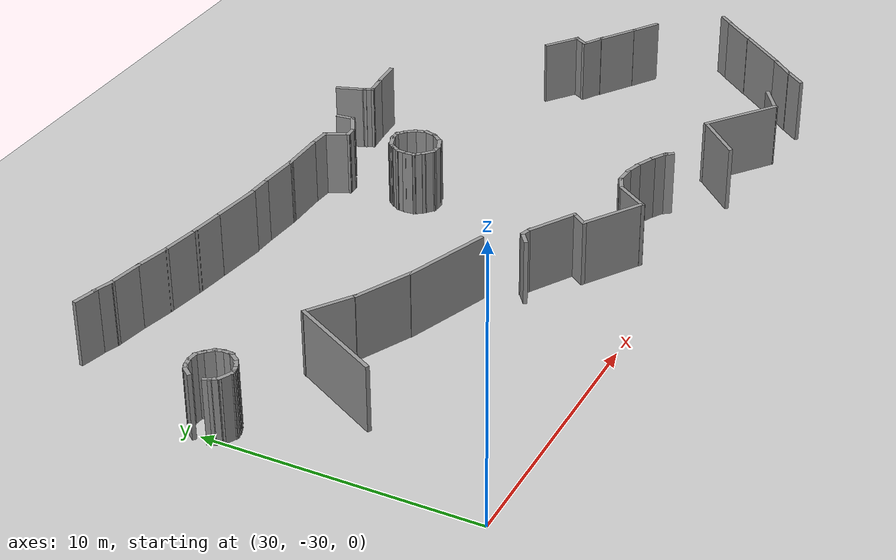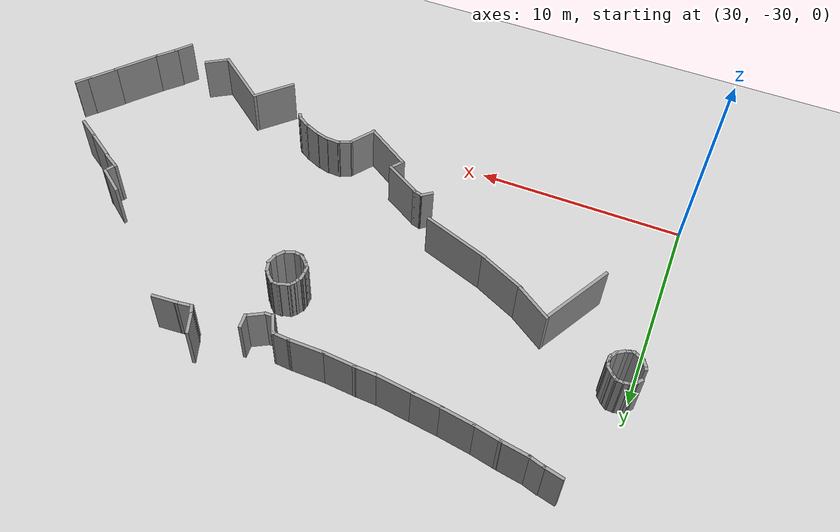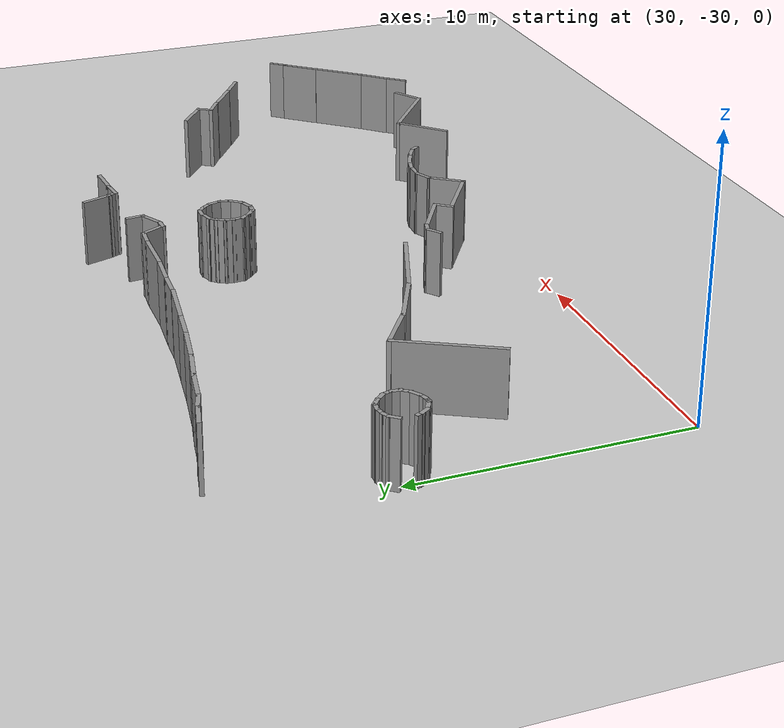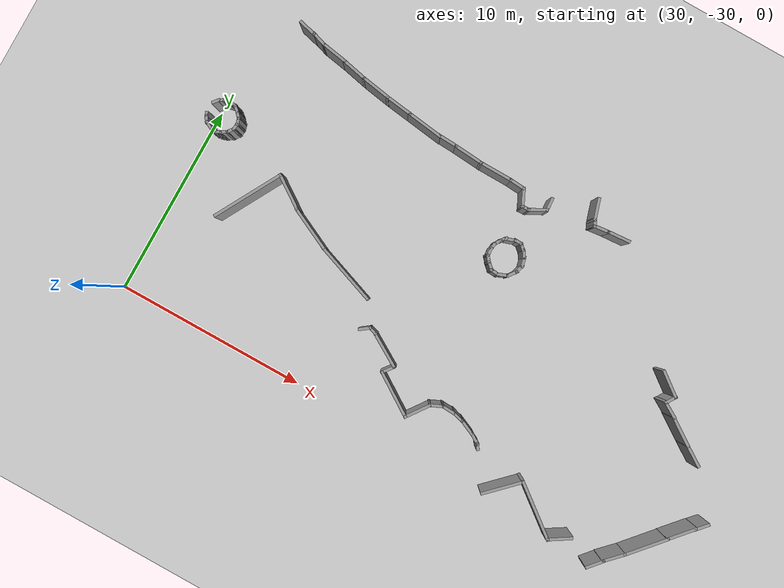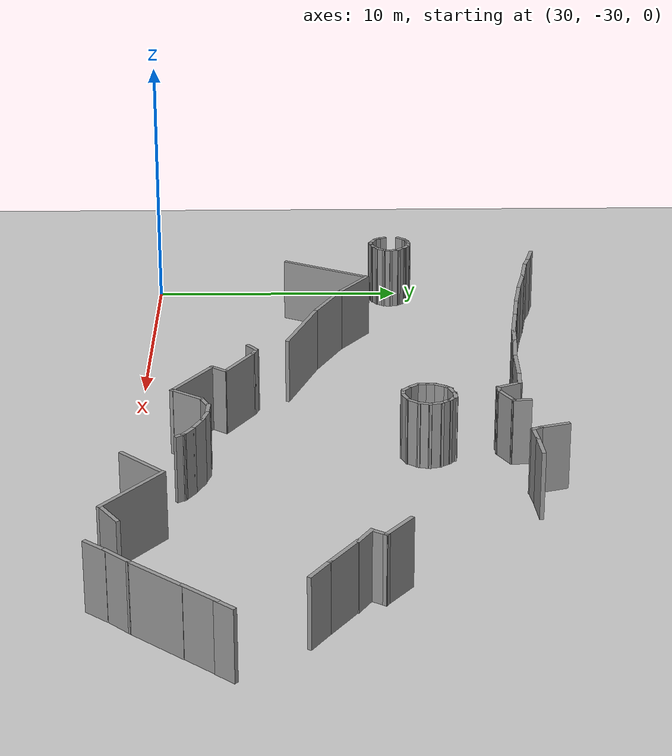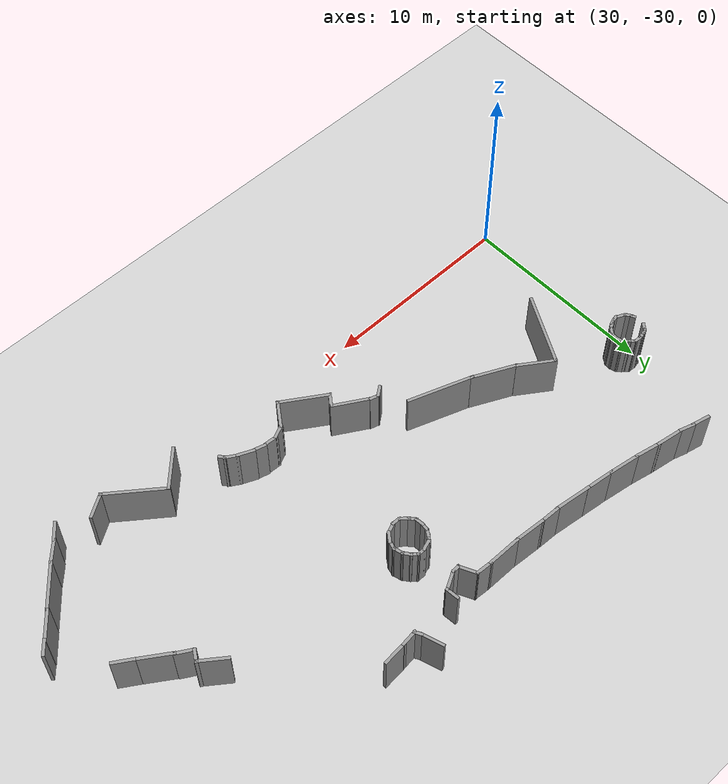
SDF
<sdf version="1.6">
 <world name="default">
  <model name="ground_plane">
   <static>1</static>
   <link name="link">
    <collision name="collision">
     <geometry><plane><normal>0 0 1</normal><size>100 100</size></plane></geometry>
     <surface><friction><ode><mu>100</mu><mu2>50</mu2></ode></friction></surface>
    </collision>
    <visual name="visual">
     <cast_shadows>0</cast_shadows>
     <geometry><plane><normal>0 0 1</normal><size>100 100</size></plane></geometry>
     <material>
      <script><uri>file://media/materials/scripts/gazebo.material</uri><name>Gazebo/Grey</name></script>
     </material>
    </visual>
   </link>
  </model>
  <model name="scene">
   <pose>1.8013 -1.70593 0 0 -0 0</pose>
   <link name="Wall_751">
    <collision name="Wall_751_Collision">
     <geometry><box><size>0.98929 0.15 2.5</size></box></geometry>
     <pose>0 0 1.25 0 -0 0</pose>
    </collision>
    <visual name="Wall_751_Visual">
     <pose>0 0 1.25 0 -0 0</pose>
     <geometry><box><size>0.98929 0.15 2.5</size></box></geometry>
     <material>
      <script><uri>file://media/materials/scripts/gazebo.material</uri><name>Gazebo/Grey</name></script>
      <ambient>1 1 1 1</ambient>
     </material>
    </visual>
    <pose>30.2701 -12.7562 0 0 0 -0.237654</pose>
   </link>
   <link name="Wall_752">
    <collision name="Wall_752_Collision">
     <geometry><box><size>0.839432 0.15 2.5</size></box></geometry>
     <pose>0 0 1.25 0 -0 0</pose>
    </collision>
    <visual name="Wall_752_Visual">
     <pose>0 0 1.25 0 -0 0</pose>
     <geometry><box><size>0.839432 0.15 2.5</size></box></geometry>
     <material>
      <script><uri>file://media/materials/scripts/gazebo.material</uri><name>Gazebo/Grey</name></script>
      <ambient>1 1 1 1</ambient>
     </material>
    </visual>
    <pose>31.0059 -12.9465 0 0 0 -0.312727</pose>
   </link>
   <link name="Wall_753">
    <collision name="Wall_753_Collision">
     <geometry><box><size>1.43343 0.15 2.5</size></box></geometry>
     <pose>0 0 1.25 0 -0 0</pose>
    </collision>
    <visual name="Wall_753_Visual">
     <pose>0 0 1.25 0 -0 0</pose>
     <geometry><box><size>1.43343 0.15 2.5</size></box></geometry>
     <material>
      <script><uri>file://media/materials/scripts/gazebo.material</uri><name>Gazebo/Grey</name></script>
      <ambient>1 1 1 1</ambient>
     </material>
    </visual>
    <pose>31.9813 -13.1586 0 0 0 -0.166028</pose>
   </link>
   <link name="Wall_754">
    <collision name="Wall_754_Collision">
     <geometry><box><size>1.405 0.15 2.5</size></box></geometry>
     <pose>0 0 1.25 0 -0 0</pose>
    </collision>
    <visual name="Wall_754_Visual">
     <pose>0 0 1.25 0 -0 0</pose>
     <geometry><box><size>1.405 0.15 2.5</size></box></geometry>
     <material>
      <script><uri>file://media/materials/scripts/gazebo.material</uri><name>Gazebo/Grey</name></script>
      <ambient>1 1 1 1</ambient>
     </material>
    </visual>
    <pose>33.2134 -13.3953 0 0 0 -0.209772</pose>
   </link>
   <link name="Wall_755">
    <collision name="Wall_755_Collision">
     <geometry><box><size>1.63156 0.15 2.5</size></box></geometry>
     <pose>0 0 1.25 0 -0 0</pose>
    </collision>
    <visual name="Wall_755_Visual">
     <pose>0 0 1.25 0 -0 0</pose>
     <geometry><box><size>1.63156 0.15 2.5</size></box></geometry>
     <material>
      <script><uri>file://media/materials/scripts/gazebo.material</uri><name>Gazebo/Grey</name></script>
      <ambient>1 1 1 1</ambient>
     </material>
    </visual>
    <pose>34.5728 -13.6453 0 0 0 -0.161769</pose>
   </link>
   <link name="Wall_756">
    <collision name="Wall_756_Collision">
     <geometry><box><size>1.50804 0.15 2.5</size></box></geometry>
     <pose>0 0 1.25 0 -0 0</pose>
    </collision>
    <visual name="Wall_756_Visual">
     <pose>0 0 1.25 0 -0 0</pose>
     <geometry><box><size>1.50804 0.15 2.5</size></box></geometry>
     <material>
      <script><uri>file://media/materials/scripts/gazebo.material</uri><name>Gazebo/Grey</name></script>
      <ambient>1 1 1 1</ambient>
     </material>
    </visual>
    <pose>35.9628 -13.8517 0 0 0 -0.128646</pose>
   </link>
   <link name="Wall_757">
    <collision name="Wall_757_Collision">
     <geometry><box><size>1.95376 0.15 2.5</size></box></geometry>
     <pose>0 0 1.25 0 -0 0</pose>
    </collision>
    <visual name="Wall_757_Visual">
     <pose>0 0 1.25 0 -0 0</pose>
     <geometry><box><size>1.95376 0.15 2.5</size></box></geometry>
     <material>
      <script><uri>file://media/materials/scripts/gazebo.material</uri><name>Gazebo/Grey</name></script>
      <ambient>1 1 1 1</ambient>
     </material>
    </visual>
    <pose>37.5161 -14.055 0 0 0 -0.129145</pose>
   </link>
   <link name="Wall_758">
    <collision name="Wall_758_Collision">
     <geometry><box><size>1.10281 0.15 2.5</size></box></geometry>
     <pose>0 0 1.25 0 -0 0</pose>
    </collision>
    <visual name="Wall_758_Visual">
     <pose>0 0 1.25 0 -0 0</pose>
     <geometry><box><size>1.10281 0.15 2.5</size></box></geometry>
     <material>
      <script><uri>file://media/materials/scripts/gazebo.material</uri><name>Gazebo/Grey</name></script>
      <ambient>1 1 1 1</ambient>
     </material>
    </visual>
    <pose>38.8863 -14.1795 0 0 0 -0.048057</pose>
   </link>
   <link name="Wall_759">
    <collision name="Wall_759_Collision">
     <geometry><box><size>1.62074 0.15 2.5</size></box></geometry>
     <pose>0 0 1.25 0 -0 0</pose>
    </collision>
    <visual name="Wall_759_Visual">
     <pose>0 0 1.25 0 -0 0</pose>
     <geometry><box><size>1.62074 0.15 2.5</size></box></geometry>
     <material>
      <script><uri>file://media/materials/scripts/gazebo.material</uri><name>Gazebo/Grey</name></script>
      <ambient>1 1 1 1</ambient>
     </material>
    </visual>
    <pose>40.0807 -14.2605 0 0 0 -0.079056</pose>
   </link>
   <link name="Wall_760">
    <collision name="Wall_760_Collision">
     <geometry><box><size>1.81132 0.15 2.5</size></box></geometry>
     <pose>0 0 1.25 0 -0 0</pose>
    </collision>
    <visual name="Wall_760_Visual">
     <pose>0 0 1.25 0 -0 0</pose>
     <geometry><box><size>1.81132 0.15 2.5</size></box></geometry>
     <material>
      <script><uri>file://media/materials/scripts/gazebo.material</uri><name>Gazebo/Grey</name></script>
      <ambient>1 1 1 1</ambient>
     </material>
    </visual>
    <pose>41.6299 -14.3258 0 0 0 -0.008739</pose>
   </link>
   <link name="Wall_761">
    <collision name="Wall_761_Collision">
     <geometry><box><size>0.889312 0.15 2.5</size></box></geometry>
     <pose>0 0 1.25 0 -0 0</pose>
    </collision>
    <visual name="Wall_761_Visual">
     <pose>0 0 1.25 0 -0 0</pose>
     <geometry><box><size>0.889312 0.15 2.5</size></box></geometry>
     <material>
      <script><uri>file://media/materials/scripts/gazebo.material</uri><name>Gazebo/Grey</name></script>
      <ambient>1 1 1 1</ambient>
     </material>
    </visual>
    <pose>42.8437 -14.3597 0 0 0 -0.071996</pose>
   </link>
   <link name="Wall_762">
    <collision name="Wall_762_Collision">
     <geometry><box><size>1.02787 0.15 2.5</size></box></geometry>
     <pose>0 0 1.25 0 -0 0</pose>
    </collision>
    <visual name="Wall_762_Visual">
     <pose>0 0 1.25 0 -0 0</pose>
     <geometry><box><size>1.02787 0.15 2.5</size></box></geometry>
     <material>
      <script><uri>file://media/materials/scripts/gazebo.material</uri><name>Gazebo/Grey</name></script>
      <ambient>1 1 1 1</ambient>
     </material>
    </visual>
    <pose>43.4186 -14.7811 0 0 0 -1.119</pose>
   </link>
   <link name="Wall_763">
    <collision name="Wall_763_Collision">
     <geometry><box><size>0.484004 0.15 2.5</size></box></geometry>
     <pose>0 0 1.25 0 -0 0</pose>
    </collision>
    <visual name="Wall_763_Visual">
     <pose>0 0 1.25 0 -0 0</pose>
     <geometry><box><size>0.484004 0.15 2.5</size></box></geometry>
     <material>
      <script><uri>file://media/materials/scripts/gazebo.material</uri><name>Gazebo/Grey</name></script>
      <ambient>1 1 1 1</ambient>
     </material>
    </visual>
    <pose>43.7625 -15.1688 0 0 -0 0.043483</pose>
   </link>
   <link name="Wall_764">
    <collision name="Wall_764_Collision">
     <geometry><box><size>1.03221 0.15 2.5</size></box></geometry>
     <pose>0 0 1.25 0 -0 0</pose>
    </collision>
    <visual name="Wall_764_Visual">
     <pose>0 0 1.25 0 -0 0</pose>
     <geometry><box><size>1.03221 0.15 2.5</size></box></geometry>
     <material>
      <script><uri>file://media/materials/scripts/gazebo.material</uri><name>Gazebo/Grey</name></script>
      <ambient>1 1 1 1</ambient>
     </material>
    </visual>
    <pose>44.33 -14.9482 0 0 -0 0.504868</pose>
   </link>
   <link name="Wall_765">
    <collision name="Wall_765_Collision">
     <geometry><box><size>0.729718 0.15 2.5</size></box></geometry>
     <pose>0 0 1.25 0 -0 0</pose>
    </collision>
    <visual name="Wall_765_Visual">
     <pose>0 0 1.25 0 -0 0</pose>
     <geometry><box><size>0.729718 0.15 2.5</size></box></geometry>
     <material>
      <script><uri>file://media/materials/scripts/gazebo.material</uri><name>Gazebo/Grey</name></script>
      <ambient>1 1 1 1</ambient>
     </material>
    </visual>
    <pose>44.7063 -14.446 0 0 -0 1.65447</pose>
   </link>
   <link name="Wall_769">
    <collision name="Wall_769_Collision">
     <geometry><box><size>1.18613 0.15 2.5</size></box></geometry>
     <pose>0 0 1.25 0 -0 0</pose>
    </collision>
    <visual name="Wall_769_Visual">
     <pose>0 0 1.25 0 -0 0</pose>
     <geometry><box><size>1.18613 0.15 2.5</size></box></geometry>
     <material>
      <script><uri>file://media/materials/scripts/gazebo.material</uri><name>Gazebo/Grey</name></script>
      <ambient>1 1 1 1</ambient>
     </material>
    </visual>
    <pose>46.8174 -13.5243 0 0 0 -1.26087</pose>
   </link>
   <link name="Wall_770">
    <collision name="Wall_770_Collision">
     <geometry><box><size>0.470663 0.15 2.5</size></box></geometry>
     <pose>0 0 1.25 0 -0 0</pose>
    </collision>
    <visual name="Wall_770_Visual">
     <pose>0 0 1.25 0 -0 0</pose>
     <geometry><box><size>0.470663 0.15 2.5</size></box></geometry>
     <material>
      <script><uri>file://media/materials/scripts/gazebo.material</uri><name>Gazebo/Grey</name></script>
      <ambient>1 1 1 1</ambient>
     </material>
    </visual>
    <pose>47.05 -14.1429 0 0 0 -1.08686</pose>
   </link>
   <link name="Wall_771">
    <collision name="Wall_771_Collision">
     <geometry><box><size>0.887862 0.15 2.5</size></box></geometry>
     <pose>0 0 1.25 0 -0 0</pose>
    </collision>
    <visual name="Wall_771_Visual">
     <pose>0 0 1.25 0 -0 0</pose>
     <geometry><box><size>0.887862 0.15 2.5</size></box></geometry>
     <material>
      <script><uri>file://media/materials/scripts/gazebo.material</uri><name>Gazebo/Grey</name></script>
      <ambient>1 1 1 1</ambient>
     </material>
    </visual>
    <pose>47.4745 -14.2431 0 0 -0 0.113384</pose>
   </link>
   <link name="Wall_772">
    <collision name="Wall_772_Collision">
     <geometry><box><size>1.27026 0.15 2.5</size></box></geometry>
     <pose>0 0 1.25 0 -0 0</pose>
    </collision>
    <visual name="Wall_772_Visual">
     <pose>0 0 1.25 0 -0 0</pose>
     <geometry><box><size>1.27026 0.15 2.5</size></box></geometry>
     <material>
      <script><uri>file://media/materials/scripts/gazebo.material</uri><name>Gazebo/Grey</name></script>
      <ambient>1 1 1 1</ambient>
     </material>
    </visual>
    <pose>48.3829 -14.1596 0 0 -0 0.07459</pose>
   </link>
   <link name="Wall_776">
    <collision name="Wall_776_Collision">
     <geometry><box><size>1.52105 0.15 2.5</size></box></geometry>
     <pose>0 0 1.25 0 -0 0</pose>
    </collision>
    <visual name="Wall_776_Visual">
     <pose>0 0 1.25 0 -0 0</pose>
     <geometry><box><size>1.52105 0.15 2.5</size></box></geometry>
     <material>
      <script><uri>file://media/materials/scripts/gazebo.material</uri><name>Gazebo/Grey</name></script>
      <ambient>1 1 1 1</ambient>
     </material>
    </visual>
    <pose>54.0741 -19.1901 0 0 0 -0.648963</pose>
   </link>
   <link name="Wall_777">
    <collision name="Wall_777_Collision">
     <geometry><box><size>0.693 0.15 2.5</size></box></geometry>
     <pose>0 0 1.25 0 -0 0</pose>
    </collision>
    <visual name="Wall_777_Visual">
     <pose>0 0 1.25 0 -0 0</pose>
     <geometry><box><size>0.693 0.15 2.5</size></box></geometry>
     <material>
      <script><uri>file://media/materials/scripts/gazebo.material</uri><name>Gazebo/Grey</name></script>
      <ambient>1 1 1 1</ambient>
     </material>
    </visual>
    <pose>54.4781 -19.8164 0 0 0 -2.12225</pose>
   </link>
   <link name="Wall_778">
    <collision name="Wall_778_Collision">
     <geometry><box><size>1.00671 0.15 2.5</size></box></geometry>
     <pose>0 0 1.25 0 -0 0</pose>
    </collision>
    <visual name="Wall_778_Visual">
     <pose>0 0 1.25 0 -0 0</pose>
     <geometry><box><size>1.00671 0.15 2.5</size></box></geometry>
     <material>
      <script><uri>file://media/materials/scripts/gazebo.material</uri><name>Gazebo/Grey</name></script>
      <ambient>1 1 1 1</ambient>
     </material>
    </visual>
    <pose>54.6847 -20.2668 0 0 0 -0.537065</pose>
   </link>
   <link name="Wall_779">
    <collision name="Wall_779_Collision">
     <geometry><box><size>1.68729 0.15 2.5</size></box></geometry>
     <pose>0 0 1.25 0 -0 0</pose>
    </collision>
    <visual name="Wall_779_Visual">
     <pose>0 0 1.25 0 -0 0</pose>
     <geometry><box><size>1.68729 0.15 2.5</size></box></geometry>
     <material>
      <script><uri>file://media/materials/scripts/gazebo.material</uri><name>Gazebo/Grey</name></script>
      <ambient>1 1 1 1</ambient>
     </material>
    </visual>
    <pose>55.6704 -20.9356 0 0 0 -0.59427</pose>
   </link>
   <link name="Wall_780">
    <collision name="Wall_780_Collision">
     <geometry><box><size>1.21804 0.15 2.5</size></box></geometry>
     <pose>0 0 1.25 0 -0 0</pose>
    </collision>
    <visual name="Wall_780_Visual">
     <pose>0 0 1.25 0 -0 0</pose>
     <geometry><box><size>1.21804 0.15 2.5</size></box></geometry>
     <material>
      <script><uri>file://media/materials/scripts/gazebo.material</uri><name>Gazebo/Grey</name></script>
      <ambient>1 1 1 1</ambient>
     </material>
    </visual>
    <pose>56.7742 -21.6761 0 0 0 -0.576213</pose>
   </link>
   <link name="Wall_784">
    <collision name="Wall_784_Collision">
     <geometry><box><size>1.01065 0.15 2.5</size></box></geometry>
     <pose>0 0 1.25 0 -0 0</pose>
    </collision>
    <visual name="Wall_784_Visual">
     <pose>0 0 1.25 0 -0 0</pose>
     <geometry><box><size>1.01065 0.15 2.5</size></box></geometry>
     <material>
      <script><uri>file://media/materials/scripts/gazebo.material</uri><name>Gazebo/Grey</name></script>
      <ambient>1 1 1 1</ambient>
     </material>
    </visual>
    <pose>55.1898 -28.5674 0 0 -0 0.864358</pose>
   </link>
   <link name="Wall_785">
    <collision name="Wall_785_Collision">
     <geometry><box><size>1.2309 0.15 2.5</size></box></geometry>
     <pose>0 0 1.25 0 -0 0</pose>
    </collision>
    <visual name="Wall_785_Visual">
     <pose>0 0 1.25 0 -0 0</pose>
     <geometry><box><size>1.2309 0.15 2.5</size></box></geometry>
     <material>
      <script><uri>file://media/materials/scripts/gazebo.material</uri><name>Gazebo/Grey</name></script>
      <ambient>1 1 1 1</ambient>
     </material>
    </visual>
    <pose>55.8272 -27.8531 0 0 -0 0.797959</pose>
   </link>
   <link name="Wall_786">
    <collision name="Wall_786_Collision">
     <geometry><box><size>2.36427 0.15 2.5</size></box></geometry>
     <pose>0 0 1.25 0 -0 0</pose>
    </collision>
    <visual name="Wall_786_Visual">
     <pose>0 0 1.25 0 -0 0</pose>
     <geometry><box><size>2.36427 0.15 2.5</size></box></geometry>
     <material>
      <script><uri>file://media/materials/scripts/gazebo.material</uri><name>Gazebo/Grey</name></script>
      <ambient>1 1 1 1</ambient>
     </material>
    </visual>
    <pose>56.9498 -26.6112 0 0 -0 0.855588</pose>
   </link>
   <link name="Wall_787">
    <collision name="Wall_787_Collision">
     <geometry><box><size>1.55987 0.15 2.5</size></box></geometry>
     <pose>0 0 1.25 0 -0 0</pose>
    </collision>
    <visual name="Wall_787_Visual">
     <pose>0 0 1.25 0 -0 0</pose>
     <geometry><box><size>1.55987 0.15 2.5</size></box></geometry>
     <material>
      <script><uri>file://media/materials/scripts/gazebo.material</uri><name>Gazebo/Grey</name></script>
      <ambient>1 1 1 1</ambient>
     </material>
    </visual>
    <pose>58.1396 -25.2252 0 0 -0 0.85286</pose>
   </link>
   <link name="Wall_788">
    <collision name="Wall_788_Collision">
     <geometry><box><size>0.819127 0.15 2.5</size></box></geometry>
     <pose>0 0 1.25 0 -0 0</pose>
    </collision>
    <visual name="Wall_788_Visual">
     <pose>0 0 1.25 0 -0 0</pose>
     <geometry><box><size>0.819127 0.15 2.5</size></box></geometry>
     <material>
      <script><uri>file://media/materials/scripts/gazebo.material</uri><name>Gazebo/Grey</name></script>
      <ambient>1 1 1 1</ambient>
     </material>
    </visual>
    <pose>58.825 -24.4629 0 0 -0 0.846309</pose>
   </link>
   <link name="Wall_790">
    <collision name="Wall_790_Collision">
     <geometry><box><size>1.30352 0.15 2.5</size></box></geometry>
     <pose>0 0 1.25 0 -0 0</pose>
    </collision>
    <visual name="Wall_790_Visual">
     <pose>0 0 1.25 0 -0 0</pose>
     <geometry><box><size>1.30352 0.15 2.5</size></box></geometry>
     <material>
      <script><uri>file://media/materials/scripts/gazebo.material</uri><name>Gazebo/Grey</name></script>
      <ambient>1 1 1 1</ambient>
     </material>
    </visual>
    <pose>53.0876 -28.3378 0 0 0 -2.58174</pose>
   </link>
   <link name="Wall_791">
    <collision name="Wall_791_Collision">
     <geometry><box><size>3.20216 0.15 2.5</size></box></geometry>
     <pose>0 0 1.25 0 -0 0</pose>
    </collision>
    <visual name="Wall_791_Visual">
     <pose>0 0 1.25 0 -0 0</pose>
     <geometry><box><size>3.20216 0.15 2.5</size></box></geometry>
     <material>
      <script><uri>file://media/materials/scripts/gazebo.material</uri><name>Gazebo/Grey</name></script>
      <ambient>1 1 1 1</ambient>
     </material>
    </visual>
    <pose>51.3921 -27.7292 0 0 -0 2.48285</pose>
   </link>
   <link name="Wall_792">
    <collision name="Wall_792_Collision">
     <geometry><box><size>2.21224 0.15 2.5</size></box></geometry>
     <pose>0 0 1.25 0 -0 0</pose>
    </collision>
    <visual name="Wall_792_Visual">
     <pose>0 0 1.25 0 -0 0</pose>
     <geometry><box><size>2.21224 0.15 2.5</size></box></geometry>
     <material>
      <script><uri>file://media/materials/scripts/gazebo.material</uri><name>Gazebo/Grey</name></script>
      <ambient>1 1 1 1</ambient>
     </material>
    </visual>
    <pose>49.4549 -27.542 0 0 0 -2.35807</pose>
   </link>
   <link name="Wall_796">
    <collision name="Wall_796_Collision">
     <geometry><box><size>0.646752 0.15 2.5</size></box></geometry>
     <pose>0 0 1.25 0 -0 0</pose>
    </collision>
    <visual name="Wall_796_Visual">
     <pose>0 0 1.25 0 -0 0</pose>
     <geometry><box><size>0.646752 0.15 2.5</size></box></geometry>
     <material>
      <script><uri>file://media/materials/scripts/gazebo.material</uri><name>Gazebo/Grey</name></script>
      <ambient>1 1 1 1</ambient>
     </material>
    </visual>
    <pose>39.8397 -24.0946 0 0 -0 0.642309</pose>
   </link>
   <link name="Wall_797">
    <collision name="Wall_797_Collision">
     <geometry><box><size>0.514055 0.15 2.5</size></box></geometry>
     <pose>0 0 1.25 0 -0 0</pose>
    </collision>
    <visual name="Wall_797_Visual">
     <pose>0 0 1.25 0 -0 0</pose>
     <geometry><box><size>0.514055 0.15 2.5</size></box></geometry>
     <material>
      <script><uri>file://media/materials/scripts/gazebo.material</uri><name>Gazebo/Grey</name></script>
      <ambient>1 1 1 1</ambient>
     </material>
    </visual>
    <pose>40.2302 -23.9959 0 0 0 -0.278773</pose>
   </link>
   <link name="Wall_798">
    <collision name="Wall_798_Collision">
     <geometry><box><size>2.00124 0.15 2.5</size></box></geometry>
     <pose>0 0 1.25 0 -0 0</pose>
    </collision>
    <visual name="Wall_798_Visual">
     <pose>0 0 1.25 0 -0 0</pose>
     <geometry><box><size>2.00124 0.15 2.5</size></box></geometry>
     <material>
      <script><uri>file://media/materials/scripts/gazebo.material</uri><name>Gazebo/Grey</name></script>
      <ambient>1 1 1 1</ambient>
     </material>
    </visual>
    <pose>41.1993 -24.5383 0 0 0 -0.539608</pose>
   </link>
   <link name="Wall_799">
    <collision name="Wall_799_Collision">
     <geometry><box><size>0.779509 0.15 2.5</size></box></geometry>
     <pose>0 0 1.25 0 -0 0</pose>
    </collision>
    <visual name="Wall_799_Visual">
     <pose>0 0 1.25 0 -0 0</pose>
     <geometry><box><size>0.779509 0.15 2.5</size></box></geometry>
     <material>
      <script><uri>file://media/materials/scripts/gazebo.material</uri><name>Gazebo/Grey</name></script>
      <ambient>1 1 1 1</ambient>
     </material>
    </visual>
    <pose>41.8024 -25.2807 0 0 0 -2.22285</pose>
   </link>
   <link name="Wall_800">
    <collision name="Wall_800_Collision">
     <geometry><box><size>2.58726 0.15 2.5</size></box></geometry>
     <pose>0 0 1.25 0 -0 0</pose>
    </collision>
    <visual name="Wall_800_Visual">
     <pose>0 0 1.25 0 -0 0</pose>
     <geometry><box><size>2.58726 0.15 2.5</size></box></geometry>
     <material>
      <script><uri>file://media/materials/scripts/gazebo.material</uri><name>Gazebo/Grey</name></script>
      <ambient>1 1 1 1</ambient>
     </material>
    </visual>
    <pose>42.6476 -26.1985 0 0 0 -0.579759</pose>
   </link>
   <link name="Wall_801">
    <collision name="Wall_801_Collision">
     <geometry><box><size>1.46683 0.15 2.5</size></box></geometry>
     <pose>0 0 1.25 0 -0 0</pose>
    </collision>
    <visual name="Wall_801_Visual">
     <pose>0 0 1.25 0 -0 0</pose>
     <geometry><box><size>1.46683 0.15 2.5</size></box></geometry>
     <material>
      <script><uri>file://media/materials/scripts/gazebo.material</uri><name>Gazebo/Grey</name></script>
      <ambient>1 1 1 1</ambient>
     </material>
    </visual>
    <pose>44.0345 -26.3313 0 0 -0 0.948074</pose>
   </link>
   <link name="Wall_802">
    <collision name="Wall_802_Collision">
     <geometry><box><size>0.753584 0.15 2.5</size></box></geometry>
     <pose>0 0 1.25 0 -0 0</pose>
    </collision>
    <visual name="Wall_802_Visual">
     <pose>0 0 1.25 0 -0 0</pose>
     <geometry><box><size>0.753584 0.15 2.5</size></box></geometry>
     <material>
      <script><uri>file://media/materials/scripts/gazebo.material</uri><name>Gazebo/Grey</name></script>
      <ambient>1 1 1 1</ambient>
     </material>
    </visual>
    <pose>44.6937 -25.6555 0 0 -0 0.423948</pose>
   </link>
   <link name="Wall_803">
    <collision name="Wall_803_Collision">
     <geometry><box><size>0.787339 0.15 2.5</size></box></geometry>
     <pose>0 0 1.25 0 -0 0</pose>
    </collision>
    <visual name="Wall_803_Visual">
     <pose>0 0 1.25 0 -0 0</pose>
     <geometry><box><size>0.787339 0.15 2.5</size></box></geometry>
     <material>
      <script><uri>file://media/materials/scripts/gazebo.material</uri><name>Gazebo/Grey</name></script>
      <ambient>1 1 1 1</ambient>
     </material>
    </visual>
    <pose>45.2872 -25.5311 0 0 0 -0.051573</pose>
   </link>
   <link name="Wall_804">
    <collision name="Wall_804_Collision">
     <geometry><box><size>0.717811 0.15 2.5</size></box></geometry>
     <pose>0 0 1.25 0 -0 0</pose>
    </collision>
    <visual name="Wall_804_Visual">
     <pose>0 0 1.25 0 -0 0</pose>
     <geometry><box><size>0.717811 0.15 2.5</size></box></geometry>
     <material>
      <script><uri>file://media/materials/scripts/gazebo.material</uri><name>Gazebo/Grey</name></script>
      <ambient>1 1 1 1</ambient>
     </material>
    </visual>
    <pose>45.8785 -25.6084 0 0 0 -0.277021</pose>
   </link>
   <link name="Wall_805">
    <collision name="Wall_805_Collision">
     <geometry><box><size>0.921295 0.15 2.5</size></box></geometry>
     <pose>0 0 1.25 0 -0 0</pose>
    </collision>
    <visual name="Wall_805_Visual">
     <pose>0 0 1.25 0 -0 0</pose>
     <geometry><box><size>0.921295 0.15 2.5</size></box></geometry>
     <material>
      <script><uri>file://media/materials/scripts/gazebo.material</uri><name>Gazebo/Grey</name></script>
      <ambient>1 1 1 1</ambient>
     </material>
    </visual>
    <pose>46.5032 -25.8277 0 0 0 -0.423116</pose>
   </link>
   <link name="Wall_806">
    <collision name="Wall_806_Collision">
     <geometry><box><size>0.719877 0.15 2.5</size></box></geometry>
     <pose>0 0 1.25 0 -0 0</pose>
    </collision>
    <visual name="Wall_806_Visual">
     <pose>0 0 1.25 0 -0 0</pose>
     <geometry><box><size>0.719877 0.15 2.5</size></box></geometry>
     <material>
      <script><uri>file://media/materials/scripts/gazebo.material</uri><name>Gazebo/Grey</name></script>
      <ambient>1 1 1 1</ambient>
     </material>
    </visual>
    <pose>47.1136 -26.1364 0 0 0 -0.555579</pose>
   </link>
   <link name="Wall_807">
    <collision name="Wall_807_Collision">
     <geometry><box><size>0.412436 0.15 2.5</size></box></geometry>
     <pose>0 0 1.25 0 -0 0</pose>
    </collision>
    <visual name="Wall_807_Visual">
     <pose>0 0 1.25 0 -0 0</pose>
     <geometry><box><size>0.412436 0.15 2.5</size></box></geometry>
     <material>
      <script><uri>file://media/materials/scripts/gazebo.material</uri><name>Gazebo/Grey</name></script>
      <ambient>1 1 1 1</ambient>
     </material>
    </visual>
    <pose>47.4176 -26.3917 0 0 0 -0.928925</pose>
   </link>
   <link name="Wall_810">
    <collision name="Wall_810_Collision">
     <geometry><box><size>3.84944 0.15 2.5</size></box></geometry>
     <pose>0 0 1.25 0 -0 0</pose>
    </collision>
    <visual name="Wall_810_Visual">
     <pose>0 0 1.25 0 -0 0</pose>
     <geometry><box><size>3.84944 0.15 2.5</size></box></geometry>
     <material>
      <script><uri>file://media/materials/scripts/gazebo.material</uri><name>Gazebo/Grey</name></script>
      <ambient>1 1 1 1</ambient>
     </material>
    </visual>
    <pose>31.7205 -21.2552 0 0 -0 1.06729</pose>
   </link>
   <link name="Wall_811">
    <collision name="Wall_811_Collision">
     <geometry><box><size>2.005 0.15 2.5</size></box></geometry>
     <pose>0 0 1.25 0 -0 0</pose>
    </collision>
    <visual name="Wall_811_Visual">
     <pose>0 0 1.25 0 -0 0</pose>
     <geometry><box><size>2.005 0.15 2.5</size></box></geometry>
     <material>
      <script><uri>file://media/materials/scripts/gazebo.material</uri><name>Gazebo/Grey</name></script>
      <ambient>1 1 1 1</ambient>
     </material>
    </visual>
    <pose>33.3765 -20.1395 0 0 0 -0.603828</pose>
   </link>
   <link name="Wall_812">
    <collision name="Wall_812_Collision">
     <geometry><box><size>2.39678 0.15 2.5</size></box></geometry>
     <pose>0 0 1.25 0 -0 0</pose>
    </collision>
    <visual name="Wall_812_Visual">
     <pose>0 0 1.25 0 -0 0</pose>
     <geometry><box><size>2.39678 0.15 2.5</size></box></geometry>
     <material>
      <script><uri>file://media/materials/scripts/gazebo.material</uri><name>Gazebo/Grey</name></script>
      <ambient>1 1 1 1</ambient>
     </material>
    </visual>
    <pose>35.1518 -21.1765 0 0 0 -0.449593</pose>
   </link>
   <link name="Wall_813">
    <collision name="Wall_813_Collision">
     <geometry><box><size>3.42062 0.15 2.5</size></box></geometry>
     <pose>0 0 1.25 0 -0 0</pose>
    </collision>
    <visual name="Wall_813_Visual">
     <pose>0 0 1.25 0 -0 0</pose>
     <geometry><box><size>3.42062 0.15 2.5</size></box></geometry>
     <material>
      <script><uri>file://media/materials/scripts/gazebo.material</uri><name>Gazebo/Grey</name></script>
      <ambient>1 1 1 1</ambient>
     </material>
    </visual>
    <pose>37.67 -22.2152 0 0 0 -0.343286</pose>
   </link>
   <link name="Wall_838">
    <collision name="Wall_838_Collision">
     <geometry><box><size>0.431447 0.15 2.5</size></box></geometry>
     <pose>0 0 1.25 0 -0 0</pose>
    </collision>
    <visual name="Wall_838_Visual">
     <pose>0 0 1.25 0 -0 0</pose>
     <geometry><box><size>0.431447 0.15 2.5</size></box></geometry>
     <material>
      <script><uri>file://media/materials/scripts/gazebo.material</uri><name>Gazebo/Grey</name></script>
      <ambient>1 1 1 1</ambient>
     </material>
    </visual>
    <pose>28.8926 -17.7519 0 0 0 -0.09209</pose>
   </link>
   <link name="Wall_839">
    <collision name="Wall_839_Collision">
     <geometry><box><size>0.447133 0.15 2.5</size></box></geometry>
     <pose>0 0 1.25 0 -0 0</pose>
    </collision>
    <visual name="Wall_839_Visual">
     <pose>0 0 1.25 0 -0 0</pose>
     <geometry><box><size>0.447133 0.15 2.5</size></box></geometry>
     <material>
      <script><uri>file://media/materials/scripts/gazebo.material</uri><name>Gazebo/Grey</name></script>
      <ambient>1 1 1 1</ambient>
     </material>
    </visual>
    <pose>29.1578 -17.8567 0 0 0 -0.666342</pose>
   </link>
   <link name="Wall_840">
    <collision name="Wall_840_Collision">
     <geometry><box><size>0.490764 0.15 2.5</size></box></geometry>
     <pose>0 0 1.25 0 -0 0</pose>
    </collision>
    <visual name="Wall_840_Visual">
     <pose>0 0 1.25 0 -0 0</pose>
     <geometry><box><size>0.490764 0.15 2.5</size></box></geometry>
     <material>
      <script><uri>file://media/materials/scripts/gazebo.material</uri><name>Gazebo/Grey</name></script>
      <ambient>1 1 1 1</ambient>
     </material>
    </visual>
    <pose>29.3814 -18.0741 0 0 0 -0.829238</pose>
   </link>
   <link name="Wall_841">
    <collision name="Wall_841_Collision">
     <geometry><box><size>0.453724 0.15 2.5</size></box></geometry>
     <pose>0 0 1.25 0 -0 0</pose>
    </collision>
    <visual name="Wall_841_Visual">
     <pose>0 0 1.25 0 -0 0</pose>
     <geometry><box><size>0.453724 0.15 2.5</size></box></geometry>
     <material>
      <script><uri>file://media/materials/scripts/gazebo.material</uri><name>Gazebo/Grey</name></script>
      <ambient>1 1 1 1</ambient>
     </material>
    </visual>
    <pose>29.5447 -18.3463 0 0 0 -1.30461</pose>
   </link>
   <link name="Wall_842">
    <collision name="Wall_842_Collision">
     <geometry><box><size>0.435362 0.15 2.5</size></box></geometry>
     <pose>0 0 1.25 0 -0 0</pose>
    </collision>
    <visual name="Wall_842_Visual">
     <pose>0 0 1.25 0 -0 0</pose>
     <geometry><box><size>0.435362 0.15 2.5</size></box></geometry>
     <material>
      <script><uri>file://media/materials/scripts/gazebo.material</uri><name>Gazebo/Grey</name></script>
      <ambient>1 1 1 1</ambient>
     </material>
    </visual>
    <pose>29.5695 -18.643 0 0 0 -1.67708</pose>
   </link>
   <link name="Wall_843">
    <collision name="Wall_843_Collision">
     <geometry><box><size>0.484761 0.15 2.5</size></box></geometry>
     <pose>0 0 1.25 0 -0 0</pose>
    </collision>
    <visual name="Wall_843_Visual">
     <pose>0 0 1.25 0 -0 0</pose>
     <geometry><box><size>0.484761 0.15 2.5</size></box></geometry>
     <material>
      <script><uri>file://media/materials/scripts/gazebo.material</uri><name>Gazebo/Grey</name></script>
      <ambient>1 1 1 1</ambient>
     </material>
    </visual>
    <pose>29.4562 -18.9121 0 0 0 -2.19788</pose>
   </link>
   <link name="Wall_844">
    <collision name="Wall_844_Collision">
     <geometry><box><size>0.475386 0.15 2.5</size></box></geometry>
     <pose>0 0 1.25 0 -0 0</pose>
    </collision>
    <visual name="Wall_844_Visual">
     <pose>0 0 1.25 0 -0 0</pose>
     <geometry><box><size>0.475386 0.15 2.5</size></box></geometry>
     <material>
      <script><uri>file://media/materials/scripts/gazebo.material</uri><name>Gazebo/Grey</name></script>
      <ambient>1 1 1 1</ambient>
     </material>
    </visual>
    <pose>29.2138 -19.1372 0 0 0 -2.55821</pose>
   </link>
   <link name="Wall_845">
    <collision name="Wall_845_Collision">
     <geometry><box><size>0.388103 0.15 2.5</size></box></geometry>
     <pose>0 0 1.25 0 -0 0</pose>
    </collision>
    <visual name="Wall_845_Visual">
     <pose>0 0 1.25 0 -0 0</pose>
     <geometry><box><size>0.388103 0.15 2.5</size></box></geometry>
     <material>
      <script><uri>file://media/materials/scripts/gazebo.material</uri><name>Gazebo/Grey</name></script>
      <ambient>1 1 1 1</ambient>
     </material>
    </visual>
    <pose>28.9757 -19.2706 0 0 0 -2.76571</pose>
   </link>
   <link name="Wall_846">
    <collision name="Wall_846_Collision">
     <geometry><box><size>0.360688 0.15 2.5</size></box></geometry>
     <pose>0 0 1.25 0 -0 0</pose>
    </collision>
    <visual name="Wall_846_Visual">
     <pose>0 0 1.25 0 -0 0</pose>
     <geometry><box><size>0.360688 0.15 2.5</size></box></geometry>
     <material>
      <script><uri>file://media/materials/scripts/gazebo.material</uri><name>Gazebo/Grey</name></script>
      <ambient>1 1 1 1</ambient>
     </material>
    </visual>
    <pose>28.7605 -19.32 0 0 0 -3.00751</pose>
   </link>
   <link name="Wall_851">
    <collision name="Wall_851_Collision">
     <geometry><box><size>0.615721 0.15 2.5</size></box></geometry>
     <pose>0 0 1.25 0 -0 0</pose>
    </collision>
    <visual name="Wall_851_Visual">
     <pose>0 0 1.25 0 -0 0</pose>
     <geometry><box><size>0.615721 0.15 2.5</size></box></geometry>
     <material>
      <script><uri>file://media/materials/scripts/gazebo.material</uri><name>Gazebo/Grey</name></script>
      <ambient>1 1 1 1</ambient>
     </material>
    </visual>
    <pose>28.4563 -19.2297 0 0 -0 2.67691</pose>
   </link>
   <link name="Wall_852">
    <collision name="Wall_852_Collision">
     <geometry><box><size>0.43909 0.15 2.5</size></box></geometry>
     <pose>0 0 1.25 0 -0 0</pose>
    </collision>
    <visual name="Wall_852_Visual">
     <pose>0 0 1.25 0 -0 0</pose>
     <geometry><box><size>0.43909 0.15 2.5</size></box></geometry>
     <material>
      <script><uri>file://media/materials/scripts/gazebo.material</uri><name>Gazebo/Grey</name></script>
      <ambient>1 1 1 1</ambient>
     </material>
    </visual>
    <pose>28.1608 -19.0043 0 0 -0 2.14898</pose>
   </link>
   <link name="Wall_853">
    <collision name="Wall_853_Collision">
     <geometry><box><size>0.314008 0.15 2.5</size></box></geometry>
     <pose>0 0 1.25 0 -0 0</pose>
    </collision>
    <visual name="Wall_853_Visual">
     <pose>0 0 1.25 0 -0 0</pose>
     <geometry><box><size>0.314008 0.15 2.5</size></box></geometry>
     <material>
      <script><uri>file://media/materials/scripts/gazebo.material</uri><name>Gazebo/Grey</name></script>
      <ambient>1 1 1 1</ambient>
     </material>
    </visual>
    <pose>28.0573 -18.8081 0 0 -0 1.98303</pose>
   </link>
   <link name="Wall_856">
    <collision name="Wall_856_Collision">
     <geometry><box><size>0.450861 0.15 2.5</size></box></geometry>
     <pose>0 0 1.25 0 -0 0</pose>
    </collision>
    <visual name="Wall_856_Visual">
     <pose>0 0 1.25 0 -0 0</pose>
     <geometry><box><size>0.450861 0.15 2.5</size></box></geometry>
     <material>
      <script><uri>file://media/materials/scripts/gazebo.material</uri><name>Gazebo/Grey</name></script>
      <ambient>1 1 1 1</ambient>
     </material>
    </visual>
    <pose>28.1388 -18.032 0 0 -0 0.896391</pose>
   </link>
   <link name="Wall_857">
    <collision name="Wall_857_Collision">
     <geometry><box><size>0.379579 0.15 2.5</size></box></geometry>
     <pose>0 0 1.25 0 -0 0</pose>
    </collision>
    <visual name="Wall_857_Visual">
     <pose>0 0 1.25 0 -0 0</pose>
     <geometry><box><size>0.379579 0.15 2.5</size></box></geometry>
     <material>
      <script><uri>file://media/materials/scripts/gazebo.material</uri><name>Gazebo/Grey</name></script>
      <ambient>1 1 1 1</ambient>
     </material>
    </visual>
    <pose>28.34 -17.8562 0 0 -0 0.532536</pose>
   </link>
   <link name="Wall_858">
    <collision name="Wall_858_Collision">
     <geometry><box><size>0.416104 0.15 2.5</size></box></geometry>
     <pose>0 0 1.25 0 -0 0</pose>
    </collision>
    <visual name="Wall_858_Visual">
     <pose>0 0 1.25 0 -0 0</pose>
     <geometry><box><size>0.416104 0.15 2.5</size></box></geometry>
     <material>
      <script><uri>file://media/materials/scripts/gazebo.material</uri><name>Gazebo/Grey</name></script>
      <ambient>1 1 1 1</ambient>
     </material>
    </visual>
    <pose>28.5683 -17.7755 0 0 -0 0.233444</pose>
   </link>
   <link name="Wall_866">
    <collision name="Wall_866_Collision">
     <geometry><box><size>0.482036 0.15 2.5</size></box></geometry>
     <pose>0 0 1.25 0 -0 0</pose>
    </collision>
    <visual name="Wall_866_Visual">
     <pose>0 0 1.25 0 -0 0</pose>
     <geometry><box><size>0.482036 0.15 2.5</size></box></geometry>
     <material>
      <script><uri>file://media/materials/scripts/gazebo.material</uri><name>Gazebo/Grey</name></script>
      <ambient>1 1 1 1</ambient>
     </material>
    </visual>
    <pose>44.2715 -16.7746 0 0 0 -0.033257</pose>
   </link>
   <link name="Wall_867">
    <collision name="Wall_867_Collision">
     <geometry><box><size>0.46012 0.15 2.5</size></box></geometry>
     <pose>0 0 1.25 0 -0 0</pose>
    </collision>
    <visual name="Wall_867_Visual">
     <pose>0 0 1.25 0 -0 0</pose>
     <geometry><box><size>0.46012 0.15 2.5</size></box></geometry>
     <material>
      <script><uri>file://media/materials/scripts/gazebo.material</uri><name>Gazebo/Grey</name></script>
      <ambient>1 1 1 1</ambient>
     </material>
    </visual>
    <pose>44.5537 -16.8937 0 0 0 -0.722901</pose>
   </link>
   <link name="Wall_868">
    <collision name="Wall_868_Collision">
     <geometry><box><size>0.523264 0.15 2.5</size></box></geometry>
     <pose>0 0 1.25 0 -0 0</pose>
    </collision>
    <visual name="Wall_868_Visual">
     <pose>0 0 1.25 0 -0 0</pose>
     <geometry><box><size>0.523264 0.15 2.5</size></box></geometry>
     <material>
      <script><uri>file://media/materials/scripts/gazebo.material</uri><name>Gazebo/Grey</name></script>
      <ambient>1 1 1 1</ambient>
     </material>
    </visual>
    <pose>44.7896 -17.1481 0 0 0 -0.949697</pose>
   </link>
   <link name="Wall_869">
    <collision name="Wall_869_Collision">
     <geometry><box><size>0.566894 0.15 2.5</size></box></geometry>
     <pose>0 0 1.25 0 -0 0</pose>
    </collision>
    <visual name="Wall_869_Visual">
     <pose>0 0 1.25 0 -0 0</pose>
     <geometry><box><size>0.566894 0.15 2.5</size></box></geometry>
     <material>
      <script><uri>file://media/materials/scripts/gazebo.material</uri><name>Gazebo/Grey</name></script>
      <ambient>1 1 1 1</ambient>
     </material>
    </visual>
    <pose>44.9601 -17.502 0 0 0 -1.32454</pose>
   </link>
   <link name="Wall_870">
    <collision name="Wall_870_Collision">
     <geometry><box><size>0.535708 0.15 2.5</size></box></geometry>
     <pose>0 0 1.25 0 -0 0</pose>
    </collision>
    <visual name="Wall_870_Visual">
     <pose>0 0 1.25 0 -0 0</pose>
     <geometry><box><size>0.535708 0.15 2.5</size></box></geometry>
     <material>
      <script><uri>file://media/materials/scripts/gazebo.material</uri><name>Gazebo/Grey</name></script>
      <ambient>1 1 1 1</ambient>
     </material>
    </visual>
    <pose>44.9671 -17.889 0 0 0 -1.85914</pose>
   </link>
   <link name="Wall_871">
    <collision name="Wall_871_Collision">
     <geometry><box><size>0.619942 0.15 2.5</size></box></geometry>
     <pose>0 0 1.25 0 -0 0</pose>
    </collision>
    <visual name="Wall_871_Visual">
     <pose>0 0 1.25 0 -0 0</pose>
     <geometry><box><size>0.619942 0.15 2.5</size></box></geometry>
     <material>
      <script><uri>file://media/materials/scripts/gazebo.material</uri><name>Gazebo/Grey</name></script>
      <ambient>1 1 1 1</ambient>
     </material>
    </visual>
    <pose>44.7798 -18.26 0 0 0 -2.22791</pose>
   </link>
   <link name="Wall_872">
    <collision name="Wall_872_Collision">
     <geometry><box><size>0.614168 0.15 2.5</size></box></geometry>
     <pose>0 0 1.25 0 -0 0</pose>
    </collision>
    <visual name="Wall_872_Visual">
     <pose>0 0 1.25 0 -0 0</pose>
     <geometry><box><size>0.614168 0.15 2.5</size></box></geometry>
     <material>
      <script><uri>file://media/materials/scripts/gazebo.material</uri><name>Gazebo/Grey</name></script>
      <ambient>1 1 1 1</ambient>
     </material>
    </visual>
    <pose>44.4099 -18.5327 0 0 0 -2.75885</pose>
   </link>
   <link name="Wall_873">
    <collision name="Wall_873_Collision">
     <geometry><box><size>0.537531 0.15 2.5</size></box></geometry>
     <pose>0 0 1.25 0 -0 0</pose>
    </collision>
    <visual name="Wall_873_Visual">
     <pose>0 0 1.25 0 -0 0</pose>
     <geometry><box><size>0.537531 0.15 2.5</size></box></geometry>
     <material>
      <script><uri>file://media/materials/scripts/gazebo.material</uri><name>Gazebo/Grey</name></script>
      <ambient>1 1 1 1</ambient>
     </material>
    </visual>
    <pose>44.0014 -18.6157 0 0 -0 3.06588</pose>
   </link>
   <link name="Wall_874">
    <collision name="Wall_874_Collision">
     <geometry><box><size>0.559312 0.15 2.5</size></box></geometry>
     <pose>0 0 1.25 0 -0 0</pose>
    </collision>
    <visual name="Wall_874_Visual">
     <pose>0 0 1.25 0 -0 0</pose>
     <geometry><box><size>0.559312 0.15 2.5</size></box></geometry>
     <material>
      <script><uri>file://media/materials/scripts/gazebo.material</uri><name>Gazebo/Grey</name></script>
      <ambient>1 1 1 1</ambient>
     </material>
    </visual>
    <pose>43.6647 -18.467 0 0 -0 2.42685</pose>
   </link>
   <link name="Wall_875">
    <collision name="Wall_875_Collision">
     <geometry><box><size>0.499583 0.15 2.5</size></box></geometry>
     <pose>0 0 1.25 0 -0 0</pose>
    </collision>
    <visual name="Wall_875_Visual">
     <pose>0 0 1.25 0 -0 0</pose>
     <geometry><box><size>0.499583 0.15 2.5</size></box></geometry>
     <material>
      <script><uri>file://media/materials/scripts/gazebo.material</uri><name>Gazebo/Grey</name></script>
      <ambient>1 1 1 1</ambient>
     </material>
    </visual>
    <pose>43.4096 -18.1982 0 0 -0 2.26284</pose>
   </link>
   <link name="Wall_876">
    <collision name="Wall_876_Collision">
     <geometry><box><size>0.509907 0.15 2.5</size></box></geometry>
     <pose>0 0 1.25 0 -0 0</pose>
    </collision>
    <visual name="Wall_876_Visual">
     <pose>0 0 1.25 0 -0 0</pose>
     <geometry><box><size>0.509907 0.15 2.5</size></box></geometry>
     <material>
      <script><uri>file://media/materials/scripts/gazebo.material</uri><name>Gazebo/Grey</name></script>
      <ambient>1 1 1 1</ambient>
     </material>
    </visual>
    <pose>43.2934 -17.884 0 0 -0 1.65816</pose>
   </link>
   <link name="Wall_877">
    <collision name="Wall_877_Collision">
     <geometry><box><size>0.444885 0.15 2.5</size></box></geometry>
     <pose>0 0 1.25 0 -0 0</pose>
    </collision>
    <visual name="Wall_877_Visual">
     <pose>0 0 1.25 0 -0 0</pose>
     <geometry><box><size>0.444885 0.15 2.5</size></box></geometry>
     <material>
      <script><uri>file://media/materials/scripts/gazebo.material</uri><name>Gazebo/Grey</name></script>
      <ambient>1 1 1 1</ambient>
     </material>
    </visual>
    <pose>43.303 -17.5576 0 0 -0 1.4739</pose>
   </link>
   <link name="Wall_878">
    <collision name="Wall_878_Collision">
     <geometry><box><size>0.475131 0.15 2.5</size></box></geometry>
     <pose>0 0 1.25 0 -0 0</pose>
    </collision>
    <visual name="Wall_878_Visual">
     <pose>0 0 1.25 0 -0 0</pose>
     <geometry><box><size>0.475131 0.15 2.5</size></box></geometry>
     <material>
      <script><uri>file://media/materials/scripts/gazebo.material</uri><name>Gazebo/Grey</name></script>
      <ambient>1 1 1 1</ambient>
     </material>
    </visual>
    <pose>43.4088 -17.2696 0 0 -0 1.0527</pose>
   </link>
   <link name="Wall_879">
    <collision name="Wall_879_Collision">
     <geometry><box><size>0.440764 0.15 2.5</size></box></geometry>
     <pose>0 0 1.25 0 -0 0</pose>
    </collision>
    <visual name="Wall_879_Visual">
     <pose>0 0 1.25 0 -0 0</pose>
     <geometry><box><size>0.440764 0.15 2.5</size></box></geometry>
     <material>
      <script><uri>file://media/materials/scripts/gazebo.material</uri><name>Gazebo/Grey</name></script>
      <ambient>1 1 1 1</ambient>
     </material>
    </visual>
    <pose>43.5754 -17.0202 0 0 -0 0.839123</pose>
   </link>
   <link name="Wall_880">
    <collision name="Wall_880_Collision">
     <geometry><box><size>0.610115 0.15 2.5</size></box></geometry>
     <pose>0 0 1.25 0 -0 0</pose>
    </collision>
    <visual name="Wall_880_Visual">
     <pose>0 0 1.25 0 -0 0</pose>
     <geometry><box><size>0.610115 0.15 2.5</size></box></geometry>
     <material>
      <script><uri>file://media/materials/scripts/gazebo.material</uri><name>Gazebo/Grey</name></script>
      <ambient>1 1 1 1</ambient>
     </material>
    </visual>
    <pose>43.8798 -16.8615 0 0 -0 0.321009</pose>
   </link>
   <static>1</static>
  </model>
 </world>
</sdf>
